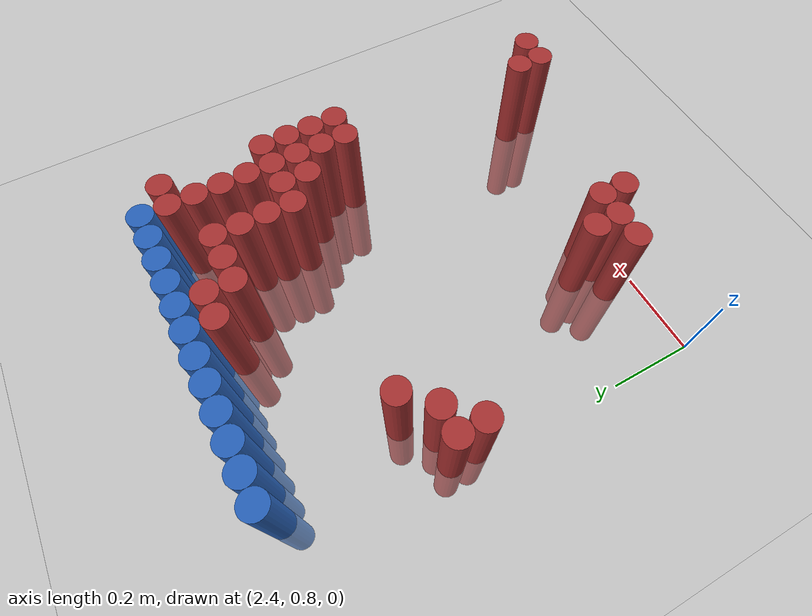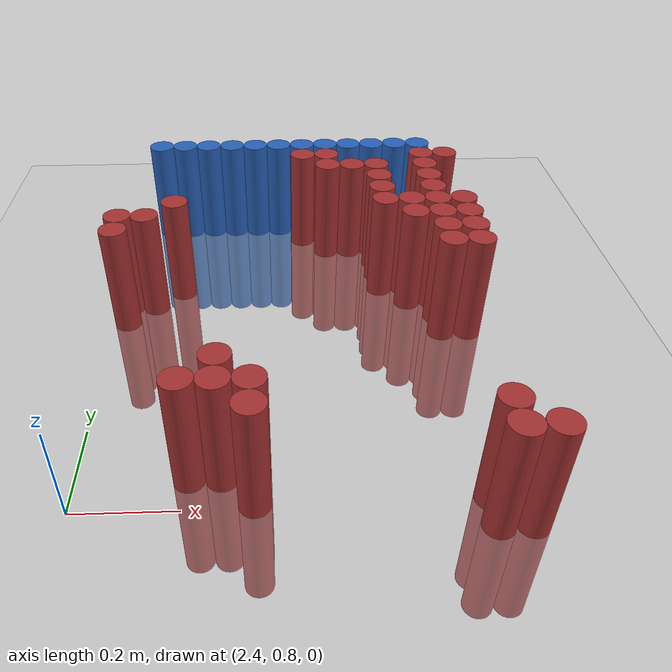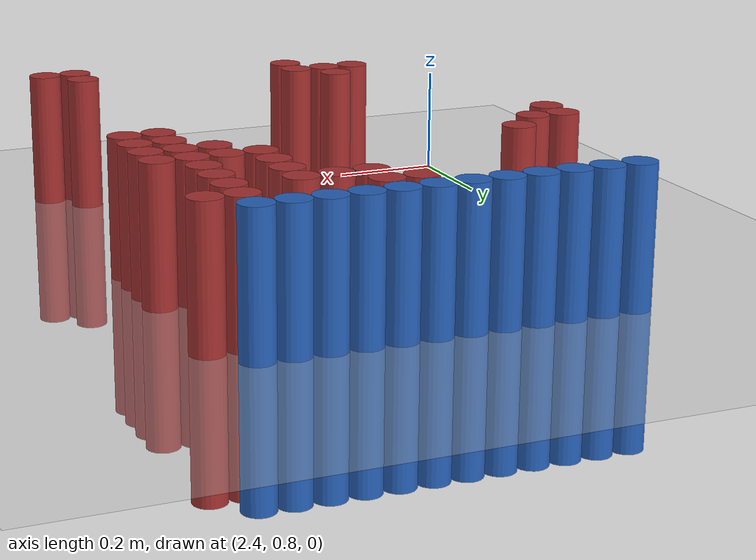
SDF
<sdf version="1.6">
 <world name="default">
  <model name="ground_plane">
   <static>1</static>
   <link name="link">
    <collision name="collision">
     <geometry><plane><normal>0 0 1</normal><size>100 100</size></plane></geometry>
     <surface><friction><ode><mu>100</mu><mu2>50</mu2></ode></friction></surface>
    </collision>
    <visual name="visual">
     <cast_shadows>0</cast_shadows>
     <geometry><plane><normal>0 0 1</normal><size>100 100</size></plane></geometry>
     <material>
      <script><uri>file://media/materials/scripts/gazebo.material</uri><name>Gazebo/Grey</name></script>
     </material>
    </visual>
   </link>
  </model>
  <model name="unit_cylinder_102">
   <static>1</static>
   <pose>2.490000 1.770000 0.000000 0.000000 0.000000 0.000000</pose>
   <link name="link">
    <inertial>
     <mass>1</mass>
     <inertia><ixx>0.145833</ixx><ixy>0</ixy><ixz>0</ixz><iyy>0.145833</iyy><iyz>0</iyz><izz>0.125</izz></inertia>
    </inertial>
    <collision name="collision">
     <geometry><cylinder><radius>0.030000</radius><length>0.5</length></cylinder></geometry>
    </collision>
    <visual name="visual">
     <geometry><cylinder><radius>0.030000</radius><length>0.5</length></cylinder></geometry>
     <material>
      <ambient>0.152000 0.379000 0.720000 1</ambient>
      <diffuse>0.152000 0.379000 0.720000 1</diffuse>
     </material>
     <material>
      <script><name>Gazebo/Grey</name><uri>file://media/materials/scripts/gazebo.material</uri></script>
     </material>
    </visual>
   </link>
  </model>
  <model name="unit_cylinder_103">
   <static>1</static>
   <pose>2.550000 1.770000 0.000000 0.000000 0.000000 0.000000</pose>
   <link name="link">
    <inertial>
     <mass>1</mass>
     <inertia><ixx>0.145833</ixx><ixy>0</ixy><ixz>0</ixz><iyy>0.145833</iyy><iyz>0</iyz><izz>0.125</izz></inertia>
    </inertial>
    <collision name="collision">
     <geometry><cylinder><radius>0.030000</radius><length>0.5</length></cylinder></geometry>
    </collision>
    <visual name="visual">
     <geometry><cylinder><radius>0.030000</radius><length>0.5</length></cylinder></geometry>
     <material>
      <ambient>0.152000 0.379000 0.720000 1</ambient>
      <diffuse>0.152000 0.379000 0.720000 1</diffuse>
     </material>
     <material>
      <script><name>Gazebo/Grey</name><uri>file://media/materials/scripts/gazebo.material</uri></script>
     </material>
    </visual>
   </link>
  </model>
  <model name="unit_cylinder_104">
   <static>1</static>
   <pose>2.610000 1.770000 0.000000 0.000000 0.000000 0.000000</pose>
   <link name="link">
    <inertial>
     <mass>1</mass>
     <inertia><ixx>0.145833</ixx><ixy>0</ixy><ixz>0</ixz><iyy>0.145833</iyy><iyz>0</iyz><izz>0.125</izz></inertia>
    </inertial>
    <collision name="collision">
     <geometry><cylinder><radius>0.030000</radius><length>0.5</length></cylinder></geometry>
    </collision>
    <visual name="visual">
     <geometry><cylinder><radius>0.030000</radius><length>0.5</length></cylinder></geometry>
     <material>
      <ambient>0.152000 0.379000 0.720000 1</ambient>
      <diffuse>0.152000 0.379000 0.720000 1</diffuse>
     </material>
     <material>
      <script><name>Gazebo/Grey</name><uri>file://media/materials/scripts/gazebo.material</uri></script>
     </material>
    </visual>
   </link>
  </model>
  <model name="unit_cylinder_105">
   <static>1</static>
   <pose>2.670000 1.770000 0.000000 0.000000 0.000000 0.000000</pose>
   <link name="link">
    <inertial>
     <mass>1</mass>
     <inertia><ixx>0.145833</ixx><ixy>0</ixy><ixz>0</ixz><iyy>0.145833</iyy><iyz>0</iyz><izz>0.125</izz></inertia>
    </inertial>
    <collision name="collision">
     <geometry><cylinder><radius>0.030000</radius><length>0.5</length></cylinder></geometry>
    </collision>
    <visual name="visual">
     <geometry><cylinder><radius>0.030000</radius><length>0.5</length></cylinder></geometry>
     <material>
      <ambient>0.152000 0.379000 0.720000 1</ambient>
      <diffuse>0.152000 0.379000 0.720000 1</diffuse>
     </material>
     <material>
      <script><name>Gazebo/Grey</name><uri>file://media/materials/scripts/gazebo.material</uri></script>
     </material>
    </visual>
   </link>
  </model>
  <model name="unit_cylinder_106">
   <static>1</static>
   <pose>2.730000 1.770000 0.000000 0.000000 0.000000 0.000000</pose>
   <link name="link">
    <inertial>
     <mass>1</mass>
     <inertia><ixx>0.145833</ixx><ixy>0</ixy><ixz>0</ixz><iyy>0.145833</iyy><iyz>0</iyz><izz>0.125</izz></inertia>
    </inertial>
    <collision name="collision">
     <geometry><cylinder><radius>0.030000</radius><length>0.5</length></cylinder></geometry>
    </collision>
    <visual name="visual">
     <geometry><cylinder><radius>0.030000</radius><length>0.5</length></cylinder></geometry>
     <material>
      <ambient>0.152000 0.379000 0.720000 1</ambient>
      <diffuse>0.152000 0.379000 0.720000 1</diffuse>
     </material>
     <material>
      <script><name>Gazebo/Grey</name><uri>file://media/materials/scripts/gazebo.material</uri></script>
     </material>
    </visual>
   </link>
  </model>
  <model name="unit_cylinder_107">
   <static>1</static>
   <pose>2.790000 1.770000 0.000000 0.000000 0.000000 0.000000</pose>
   <link name="link">
    <inertial>
     <mass>1</mass>
     <inertia><ixx>0.145833</ixx><ixy>0</ixy><ixz>0</ixz><iyy>0.145833</iyy><iyz>0</iyz><izz>0.125</izz></inertia>
    </inertial>
    <collision name="collision">
     <geometry><cylinder><radius>0.030000</radius><length>0.5</length></cylinder></geometry>
    </collision>
    <visual name="visual">
     <geometry><cylinder><radius>0.030000</radius><length>0.5</length></cylinder></geometry>
     <material>
      <ambient>0.152000 0.379000 0.720000 1</ambient>
      <diffuse>0.152000 0.379000 0.720000 1</diffuse>
     </material>
     <material>
      <script><name>Gazebo/Grey</name><uri>file://media/materials/scripts/gazebo.material</uri></script>
     </material>
    </visual>
   </link>
  </model>
  <model name="unit_cylinder_108">
   <static>1</static>
   <pose>2.850000 1.770000 0.000000 0.000000 0.000000 0.000000</pose>
   <link name="link">
    <inertial>
     <mass>1</mass>
     <inertia><ixx>0.145833</ixx><ixy>0</ixy><ixz>0</ixz><iyy>0.145833</iyy><iyz>0</iyz><izz>0.125</izz></inertia>
    </inertial>
    <collision name="collision">
     <geometry><cylinder><radius>0.030000</radius><length>0.5</length></cylinder></geometry>
    </collision>
    <visual name="visual">
     <geometry><cylinder><radius>0.030000</radius><length>0.5</length></cylinder></geometry>
     <material>
      <ambient>0.152000 0.379000 0.720000 1</ambient>
      <diffuse>0.152000 0.379000 0.720000 1</diffuse>
     </material>
     <material>
      <script><name>Gazebo/Grey</name><uri>file://media/materials/scripts/gazebo.material</uri></script>
     </material>
    </visual>
   </link>
  </model>
  <model name="unit_cylinder_109">
   <static>1</static>
   <pose>2.910000 1.770000 0.000000 0.000000 0.000000 0.000000</pose>
   <link name="link">
    <inertial>
     <mass>1</mass>
     <inertia><ixx>0.145833</ixx><ixy>0</ixy><ixz>0</ixz><iyy>0.145833</iyy><iyz>0</iyz><izz>0.125</izz></inertia>
    </inertial>
    <collision name="collision">
     <geometry><cylinder><radius>0.030000</radius><length>0.5</length></cylinder></geometry>
    </collision>
    <visual name="visual">
     <geometry><cylinder><radius>0.030000</radius><length>0.5</length></cylinder></geometry>
     <material>
      <ambient>0.152000 0.379000 0.720000 1</ambient>
      <diffuse>0.152000 0.379000 0.720000 1</diffuse>
     </material>
     <material>
      <script><name>Gazebo/Grey</name><uri>file://media/materials/scripts/gazebo.material</uri></script>
     </material>
    </visual>
   </link>
  </model>
  <model name="unit_cylinder_110">
   <static>1</static>
   <pose>2.970000 1.770000 0.000000 0.000000 0.000000 0.000000</pose>
   <link name="link">
    <inertial>
     <mass>1</mass>
     <inertia><ixx>0.145833</ixx><ixy>0</ixy><ixz>0</ixz><iyy>0.145833</iyy><iyz>0</iyz><izz>0.125</izz></inertia>
    </inertial>
    <collision name="collision">
     <geometry><cylinder><radius>0.030000</radius><length>0.5</length></cylinder></geometry>
    </collision>
    <visual name="visual">
     <geometry><cylinder><radius>0.030000</radius><length>0.5</length></cylinder></geometry>
     <material>
      <ambient>0.152000 0.379000 0.720000 1</ambient>
      <diffuse>0.152000 0.379000 0.720000 1</diffuse>
     </material>
     <material>
      <script><name>Gazebo/Grey</name><uri>file://media/materials/scripts/gazebo.material</uri></script>
     </material>
    </visual>
   </link>
  </model>
  <model name="unit_cylinder_111">
   <static>1</static>
   <pose>3.030000 1.770000 0.000000 0.000000 0.000000 0.000000</pose>
   <link name="link">
    <inertial>
     <mass>1</mass>
     <inertia><ixx>0.145833</ixx><ixy>0</ixy><ixz>0</ixz><iyy>0.145833</iyy><iyz>0</iyz><izz>0.125</izz></inertia>
    </inertial>
    <collision name="collision">
     <geometry><cylinder><radius>0.030000</radius><length>0.5</length></cylinder></geometry>
    </collision>
    <visual name="visual">
     <geometry><cylinder><radius>0.030000</radius><length>0.5</length></cylinder></geometry>
     <material>
      <ambient>0.152000 0.379000 0.720000 1</ambient>
      <diffuse>0.152000 0.379000 0.720000 1</diffuse>
     </material>
     <material>
      <script><name>Gazebo/Grey</name><uri>file://media/materials/scripts/gazebo.material</uri></script>
     </material>
    </visual>
   </link>
  </model>
  <model name="unit_cylinder_112">
   <static>1</static>
   <pose>3.090000 1.770000 0.000000 0.000000 0.000000 0.000000</pose>
   <link name="link">
    <inertial>
     <mass>1</mass>
     <inertia><ixx>0.145833</ixx><ixy>0</ixy><ixz>0</ixz><iyy>0.145833</iyy><iyz>0</iyz><izz>0.125</izz></inertia>
    </inertial>
    <collision name="collision">
     <geometry><cylinder><radius>0.030000</radius><length>0.5</length></cylinder></geometry>
    </collision>
    <visual name="visual">
     <geometry><cylinder><radius>0.030000</radius><length>0.5</length></cylinder></geometry>
     <material>
      <ambient>0.152000 0.379000 0.720000 1</ambient>
      <diffuse>0.152000 0.379000 0.720000 1</diffuse>
     </material>
     <material>
      <script><name>Gazebo/Grey</name><uri>file://media/materials/scripts/gazebo.material</uri></script>
     </material>
    </visual>
   </link>
  </model>
  <model name="unit_cylinder_113">
   <static>1</static>
   <pose>3.150000 1.770000 0.000000 0.000000 0.000000 0.000000</pose>
   <link name="link">
    <inertial>
     <mass>1</mass>
     <inertia><ixx>0.145833</ixx><ixy>0</ixy><ixz>0</ixz><iyy>0.145833</iyy><iyz>0</iyz><izz>0.125</izz></inertia>
    </inertial>
    <collision name="collision">
     <geometry><cylinder><radius>0.030000</radius><length>0.5</length></cylinder></geometry>
    </collision>
    <visual name="visual">
     <geometry><cylinder><radius>0.030000</radius><length>0.5</length></cylinder></geometry>
     <material>
      <ambient>0.152000 0.379000 0.720000 1</ambient>
      <diffuse>0.152000 0.379000 0.720000 1</diffuse>
     </material>
     <material>
      <script><name>Gazebo/Grey</name><uri>file://media/materials/scripts/gazebo.material</uri></script>
     </material>
    </visual>
   </link>
  </model>
  <model name="unit_cylinder_129">
   <static>1</static>
   <pose>2.850000 1.710000 0.000000 0.000000 0.000000 0.000000</pose>
   <link name="link">
    <inertial>
     <mass>1</mass>
     <inertia><ixx>0.145833</ixx><ixy>0</ixy><ixz>0</ixz><iyy>0.145833</iyy><iyz>0</iyz><izz>0.125</izz></inertia>
    </inertial>
    <collision name="collision">
     <geometry><cylinder><radius>0.030000</radius><length>0.5</length></cylinder></geometry>
    </collision>
    <visual name="visual">
     <geometry><cylinder><radius>0.030000</radius><length>0.5</length></cylinder></geometry>
     <material>
      <ambient>0.648000 0.192000 0.192000 1</ambient>
      <diffuse>0.648000 0.192000 0.192000 1</diffuse>
     </material>
     <material>
      <script><name>Gazebo/Grey</name><uri>file://media/materials/scripts/gazebo.material</uri></script>
     </material>
    </visual>
   </link>
  </model>
  <model name="unit_cylinder_130">
   <static>1</static>
   <pose>2.910000 1.710000 0.000000 0.000000 0.000000 0.000000</pose>
   <link name="link">
    <inertial>
     <mass>1</mass>
     <inertia><ixx>0.145833</ixx><ixy>0</ixy><ixz>0</ixz><iyy>0.145833</iyy><iyz>0</iyz><izz>0.125</izz></inertia>
    </inertial>
    <collision name="collision">
     <geometry><cylinder><radius>0.030000</radius><length>0.5</length></cylinder></geometry>
    </collision>
    <visual name="visual">
     <geometry><cylinder><radius>0.030000</radius><length>0.5</length></cylinder></geometry>
     <material>
      <ambient>0.648000 0.192000 0.192000 1</ambient>
      <diffuse>0.648000 0.192000 0.192000 1</diffuse>
     </material>
     <material>
      <script><name>Gazebo/Grey</name><uri>file://media/materials/scripts/gazebo.material</uri></script>
     </material>
    </visual>
   </link>
  </model>
  <model name="unit_cylinder_131">
   <static>1</static>
   <pose>3.150000 1.710000 0.000000 0.000000 0.000000 0.000000</pose>
   <link name="link">
    <inertial>
     <mass>1</mass>
     <inertia><ixx>0.145833</ixx><ixy>0</ixy><ixz>0</ixz><iyy>0.145833</iyy><iyz>0</iyz><izz>0.125</izz></inertia>
    </inertial>
    <collision name="collision">
     <geometry><cylinder><radius>0.030000</radius><length>0.5</length></cylinder></geometry>
    </collision>
    <visual name="visual">
     <geometry><cylinder><radius>0.030000</radius><length>0.5</length></cylinder></geometry>
     <material>
      <ambient>0.648000 0.192000 0.192000 1</ambient>
      <diffuse>0.648000 0.192000 0.192000 1</diffuse>
     </material>
     <material>
      <script><name>Gazebo/Grey</name><uri>file://media/materials/scripts/gazebo.material</uri></script>
     </material>
    </visual>
   </link>
  </model>
  <model name="unit_cylinder_132">
   <static>1</static>
   <pose>3.210000 1.710000 0.000000 0.000000 0.000000 0.000000</pose>
   <link name="link">
    <inertial>
     <mass>1</mass>
     <inertia><ixx>0.145833</ixx><ixy>0</ixy><ixz>0</ixz><iyy>0.145833</iyy><iyz>0</iyz><izz>0.125</izz></inertia>
    </inertial>
    <collision name="collision">
     <geometry><cylinder><radius>0.030000</radius><length>0.5</length></cylinder></geometry>
    </collision>
    <visual name="visual">
     <geometry><cylinder><radius>0.030000</radius><length>0.5</length></cylinder></geometry>
     <material>
      <ambient>0.648000 0.192000 0.192000 1</ambient>
      <diffuse>0.648000 0.192000 0.192000 1</diffuse>
     </material>
     <material>
      <script><name>Gazebo/Grey</name><uri>file://media/materials/scripts/gazebo.material</uri></script>
     </material>
    </visual>
   </link>
  </model>
  <model name="unit_cylinder_142">
   <static>1</static>
   <pose>2.910000 1.650000 0.000000 0.000000 0.000000 0.000000</pose>
   <link name="link">
    <inertial>
     <mass>1</mass>
     <inertia><ixx>0.145833</ixx><ixy>0</ixy><ixz>0</ixz><iyy>0.145833</iyy><iyz>0</iyz><izz>0.125</izz></inertia>
    </inertial>
    <collision name="collision">
     <geometry><cylinder><radius>0.030000</radius><length>0.5</length></cylinder></geometry>
    </collision>
    <visual name="visual">
     <geometry><cylinder><radius>0.030000</radius><length>0.5</length></cylinder></geometry>
     <material>
      <ambient>0.648000 0.192000 0.192000 1</ambient>
      <diffuse>0.648000 0.192000 0.192000 1</diffuse>
     </material>
     <material>
      <script><name>Gazebo/Grey</name><uri>file://media/materials/scripts/gazebo.material</uri></script>
     </material>
    </visual>
   </link>
  </model>
  <model name="unit_cylinder_143">
   <static>1</static>
   <pose>2.970000 1.650000 0.000000 0.000000 0.000000 0.000000</pose>
   <link name="link">
    <inertial>
     <mass>1</mass>
     <inertia><ixx>0.145833</ixx><ixy>0</ixy><ixz>0</ixz><iyy>0.145833</iyy><iyz>0</iyz><izz>0.125</izz></inertia>
    </inertial>
    <collision name="collision">
     <geometry><cylinder><radius>0.030000</radius><length>0.5</length></cylinder></geometry>
    </collision>
    <visual name="visual">
     <geometry><cylinder><radius>0.030000</radius><length>0.5</length></cylinder></geometry>
     <material>
      <ambient>0.648000 0.192000 0.192000 1</ambient>
      <diffuse>0.648000 0.192000 0.192000 1</diffuse>
     </material>
     <material>
      <script><name>Gazebo/Grey</name><uri>file://media/materials/scripts/gazebo.material</uri></script>
     </material>
    </visual>
   </link>
  </model>
  <model name="unit_cylinder_144">
   <static>1</static>
   <pose>3.030000 1.650000 0.000000 0.000000 0.000000 0.000000</pose>
   <link name="link">
    <inertial>
     <mass>1</mass>
     <inertia><ixx>0.145833</ixx><ixy>0</ixy><ixz>0</ixz><iyy>0.145833</iyy><iyz>0</iyz><izz>0.125</izz></inertia>
    </inertial>
    <collision name="collision">
     <geometry><cylinder><radius>0.030000</radius><length>0.5</length></cylinder></geometry>
    </collision>
    <visual name="visual">
     <geometry><cylinder><radius>0.030000</radius><length>0.5</length></cylinder></geometry>
     <material>
      <ambient>0.648000 0.192000 0.192000 1</ambient>
      <diffuse>0.648000 0.192000 0.192000 1</diffuse>
     </material>
     <material>
      <script><name>Gazebo/Grey</name><uri>file://media/materials/scripts/gazebo.material</uri></script>
     </material>
    </visual>
   </link>
  </model>
  <model name="unit_cylinder_145">
   <static>1</static>
   <pose>3.150000 1.650000 0.000000 0.000000 0.000000 0.000000</pose>
   <link name="link">
    <inertial>
     <mass>1</mass>
     <inertia><ixx>0.145833</ixx><ixy>0</ixy><ixz>0</ixz><iyy>0.145833</iyy><iyz>0</iyz><izz>0.125</izz></inertia>
    </inertial>
    <collision name="collision">
     <geometry><cylinder><radius>0.030000</radius><length>0.5</length></cylinder></geometry>
    </collision>
    <visual name="visual">
     <geometry><cylinder><radius>0.030000</radius><length>0.5</length></cylinder></geometry>
     <material>
      <ambient>0.648000 0.192000 0.192000 1</ambient>
      <diffuse>0.648000 0.192000 0.192000 1</diffuse>
     </material>
     <material>
      <script><name>Gazebo/Grey</name><uri>file://media/materials/scripts/gazebo.material</uri></script>
     </material>
    </visual>
   </link>
  </model>
  <model name="unit_cylinder_150">
   <static>1</static>
   <pose>3.030000 1.590000 0.000000 0.000000 0.000000 0.000000</pose>
   <link name="link">
    <inertial>
     <mass>1</mass>
     <inertia><ixx>0.145833</ixx><ixy>0</ixy><ixz>0</ixz><iyy>0.145833</iyy><iyz>0</iyz><izz>0.125</izz></inertia>
    </inertial>
    <collision name="collision">
     <geometry><cylinder><radius>0.030000</radius><length>0.5</length></cylinder></geometry>
    </collision>
    <visual name="visual">
     <geometry><cylinder><radius>0.030000</radius><length>0.5</length></cylinder></geometry>
     <material>
      <ambient>0.648000 0.192000 0.192000 1</ambient>
      <diffuse>0.648000 0.192000 0.192000 1</diffuse>
     </material>
     <material>
      <script><name>Gazebo/Grey</name><uri>file://media/materials/scripts/gazebo.material</uri></script>
     </material>
    </visual>
   </link>
  </model>
  <model name="unit_cylinder_151">
   <static>1</static>
   <pose>3.150000 1.590000 0.000000 0.000000 0.000000 0.000000</pose>
   <link name="link">
    <inertial>
     <mass>1</mass>
     <inertia><ixx>0.145833</ixx><ixy>0</ixy><ixz>0</ixz><iyy>0.145833</iyy><iyz>0</iyz><izz>0.125</izz></inertia>
    </inertial>
    <collision name="collision">
     <geometry><cylinder><radius>0.030000</radius><length>0.5</length></cylinder></geometry>
    </collision>
    <visual name="visual">
     <geometry><cylinder><radius>0.030000</radius><length>0.5</length></cylinder></geometry>
     <material>
      <ambient>0.648000 0.192000 0.192000 1</ambient>
      <diffuse>0.648000 0.192000 0.192000 1</diffuse>
     </material>
     <material>
      <script><name>Gazebo/Grey</name><uri>file://media/materials/scripts/gazebo.material</uri></script>
     </material>
    </visual>
   </link>
  </model>
  <model name="unit_cylinder_154">
   <static>1</static>
   <pose>3.030000 1.530000 0.000000 0.000000 0.000000 0.000000</pose>
   <link name="link">
    <inertial>
     <mass>1</mass>
     <inertia><ixx>0.145833</ixx><ixy>0</ixy><ixz>0</ixz><iyy>0.145833</iyy><iyz>0</iyz><izz>0.125</izz></inertia>
    </inertial>
    <collision name="collision">
     <geometry><cylinder><radius>0.030000</radius><length>0.5</length></cylinder></geometry>
    </collision>
    <visual name="visual">
     <geometry><cylinder><radius>0.030000</radius><length>0.5</length></cylinder></geometry>
     <material>
      <ambient>0.648000 0.192000 0.192000 1</ambient>
      <diffuse>0.648000 0.192000 0.192000 1</diffuse>
     </material>
     <material>
      <script><name>Gazebo/Grey</name><uri>file://media/materials/scripts/gazebo.material</uri></script>
     </material>
    </visual>
   </link>
  </model>
  <model name="unit_cylinder_155">
   <static>1</static>
   <pose>3.150000 1.530000 0.000000 0.000000 0.000000 0.000000</pose>
   <link name="link">
    <inertial>
     <mass>1</mass>
     <inertia><ixx>0.145833</ixx><ixy>0</ixy><ixz>0</ixz><iyy>0.145833</iyy><iyz>0</iyz><izz>0.125</izz></inertia>
    </inertial>
    <collision name="collision">
     <geometry><cylinder><radius>0.030000</radius><length>0.5</length></cylinder></geometry>
    </collision>
    <visual name="visual">
     <geometry><cylinder><radius>0.030000</radius><length>0.5</length></cylinder></geometry>
     <material>
      <ambient>0.648000 0.192000 0.192000 1</ambient>
      <diffuse>0.648000 0.192000 0.192000 1</diffuse>
     </material>
     <material>
      <script><name>Gazebo/Grey</name><uri>file://media/materials/scripts/gazebo.material</uri></script>
     </material>
    </visual>
   </link>
  </model>
  <model name="unit_cylinder_158">
   <static>1</static>
   <pose>2.550000 1.470000 0.000000 0.000000 0.000000 0.000000</pose>
   <link name="link">
    <inertial>
     <mass>1</mass>
     <inertia><ixx>0.145833</ixx><ixy>0</ixy><ixz>0</ixz><iyy>0.145833</iyy><iyz>0</iyz><izz>0.125</izz></inertia>
    </inertial>
    <collision name="collision">
     <geometry><cylinder><radius>0.030000</radius><length>0.5</length></cylinder></geometry>
    </collision>
    <visual name="visual">
     <geometry><cylinder><radius>0.030000</radius><length>0.5</length></cylinder></geometry>
     <material>
      <ambient>0.648000 0.192000 0.192000 1</ambient>
      <diffuse>0.648000 0.192000 0.192000 1</diffuse>
     </material>
     <material>
      <script><name>Gazebo/Grey</name><uri>file://media/materials/scripts/gazebo.material</uri></script>
     </material>
    </visual>
   </link>
  </model>
  <model name="unit_cylinder_159">
   <static>1</static>
   <pose>3.030000 1.470000 0.000000 0.000000 0.000000 0.000000</pose>
   <link name="link">
    <inertial>
     <mass>1</mass>
     <inertia><ixx>0.145833</ixx><ixy>0</ixy><ixz>0</ixz><iyy>0.145833</iyy><iyz>0</iyz><izz>0.125</izz></inertia>
    </inertial>
    <collision name="collision">
     <geometry><cylinder><radius>0.030000</radius><length>0.5</length></cylinder></geometry>
    </collision>
    <visual name="visual">
     <geometry><cylinder><radius>0.030000</radius><length>0.5</length></cylinder></geometry>
     <material>
      <ambient>0.648000 0.192000 0.192000 1</ambient>
      <diffuse>0.648000 0.192000 0.192000 1</diffuse>
     </material>
     <material>
      <script><name>Gazebo/Grey</name><uri>file://media/materials/scripts/gazebo.material</uri></script>
     </material>
    </visual>
   </link>
  </model>
  <model name="unit_cylinder_160">
   <static>1</static>
   <pose>3.090000 1.470000 0.000000 0.000000 0.000000 0.000000</pose>
   <link name="link">
    <inertial>
     <mass>1</mass>
     <inertia><ixx>0.145833</ixx><ixy>0</ixy><ixz>0</ixz><iyy>0.145833</iyy><iyz>0</iyz><izz>0.125</izz></inertia>
    </inertial>
    <collision name="collision">
     <geometry><cylinder><radius>0.030000</radius><length>0.5</length></cylinder></geometry>
    </collision>
    <visual name="visual">
     <geometry><cylinder><radius>0.030000</radius><length>0.5</length></cylinder></geometry>
     <material>
      <ambient>0.648000 0.192000 0.192000 1</ambient>
      <diffuse>0.648000 0.192000 0.192000 1</diffuse>
     </material>
     <material>
      <script><name>Gazebo/Grey</name><uri>file://media/materials/scripts/gazebo.material</uri></script>
     </material>
    </visual>
   </link>
  </model>
  <model name="unit_cylinder_161">
   <static>1</static>
   <pose>3.150000 1.470000 0.000000 0.000000 0.000000 0.000000</pose>
   <link name="link">
    <inertial>
     <mass>1</mass>
     <inertia><ixx>0.145833</ixx><ixy>0</ixy><ixz>0</ixz><iyy>0.145833</iyy><iyz>0</iyz><izz>0.125</izz></inertia>
    </inertial>
    <collision name="collision">
     <geometry><cylinder><radius>0.030000</radius><length>0.5</length></cylinder></geometry>
    </collision>
    <visual name="visual">
     <geometry><cylinder><radius>0.030000</radius><length>0.5</length></cylinder></geometry>
     <material>
      <ambient>0.648000 0.192000 0.192000 1</ambient>
      <diffuse>0.648000 0.192000 0.192000 1</diffuse>
     </material>
     <material>
      <script><name>Gazebo/Grey</name><uri>file://media/materials/scripts/gazebo.material</uri></script>
     </material>
    </visual>
   </link>
  </model>
  <model name="unit_cylinder_162">
   <static>1</static>
   <pose>3.210000 1.470000 0.000000 0.000000 0.000000 0.000000</pose>
   <link name="link">
    <inertial>
     <mass>1</mass>
     <inertia><ixx>0.145833</ixx><ixy>0</ixy><ixz>0</ixz><iyy>0.145833</iyy><iyz>0</iyz><izz>0.125</izz></inertia>
    </inertial>
    <collision name="collision">
     <geometry><cylinder><radius>0.030000</radius><length>0.5</length></cylinder></geometry>
    </collision>
    <visual name="visual">
     <geometry><cylinder><radius>0.030000</radius><length>0.5</length></cylinder></geometry>
     <material>
      <ambient>0.648000 0.192000 0.192000 1</ambient>
      <diffuse>0.648000 0.192000 0.192000 1</diffuse>
     </material>
     <material>
      <script><name>Gazebo/Grey</name><uri>file://media/materials/scripts/gazebo.material</uri></script>
     </material>
    </visual>
   </link>
  </model>
  <model name="unit_cylinder_166">
   <static>1</static>
   <pose>2.430000 1.410000 0.000000 0.000000 0.000000 0.000000</pose>
   <link name="link">
    <inertial>
     <mass>1</mass>
     <inertia><ixx>0.145833</ixx><ixy>0</ixy><ixz>0</ixz><iyy>0.145833</iyy><iyz>0</iyz><izz>0.125</izz></inertia>
    </inertial>
    <collision name="collision">
     <geometry><cylinder><radius>0.030000</radius><length>0.5</length></cylinder></geometry>
    </collision>
    <visual name="visual">
     <geometry><cylinder><radius>0.030000</radius><length>0.5</length></cylinder></geometry>
     <material>
      <ambient>0.648000 0.192000 0.192000 1</ambient>
      <diffuse>0.648000 0.192000 0.192000 1</diffuse>
     </material>
     <material>
      <script><name>Gazebo/Grey</name><uri>file://media/materials/scripts/gazebo.material</uri></script>
     </material>
    </visual>
   </link>
  </model>
  <model name="unit_cylinder_167">
   <static>1</static>
   <pose>2.490000 1.410000 0.000000 0.000000 0.000000 0.000000</pose>
   <link name="link">
    <inertial>
     <mass>1</mass>
     <inertia><ixx>0.145833</ixx><ixy>0</ixy><ixz>0</ixz><iyy>0.145833</iyy><iyz>0</iyz><izz>0.125</izz></inertia>
    </inertial>
    <collision name="collision">
     <geometry><cylinder><radius>0.030000</radius><length>0.5</length></cylinder></geometry>
    </collision>
    <visual name="visual">
     <geometry><cylinder><radius>0.030000</radius><length>0.5</length></cylinder></geometry>
     <material>
      <ambient>0.648000 0.192000 0.192000 1</ambient>
      <diffuse>0.648000 0.192000 0.192000 1</diffuse>
     </material>
     <material>
      <script><name>Gazebo/Grey</name><uri>file://media/materials/scripts/gazebo.material</uri></script>
     </material>
    </visual>
   </link>
  </model>
  <model name="unit_cylinder_168">
   <static>1</static>
   <pose>3.090000 1.410000 0.000000 0.000000 0.000000 0.000000</pose>
   <link name="link">
    <inertial>
     <mass>1</mass>
     <inertia><ixx>0.145833</ixx><ixy>0</ixy><ixz>0</ixz><iyy>0.145833</iyy><iyz>0</iyz><izz>0.125</izz></inertia>
    </inertial>
    <collision name="collision">
     <geometry><cylinder><radius>0.030000</radius><length>0.5</length></cylinder></geometry>
    </collision>
    <visual name="visual">
     <geometry><cylinder><radius>0.030000</radius><length>0.5</length></cylinder></geometry>
     <material>
      <ambient>0.648000 0.192000 0.192000 1</ambient>
      <diffuse>0.648000 0.192000 0.192000 1</diffuse>
     </material>
     <material>
      <script><name>Gazebo/Grey</name><uri>file://media/materials/scripts/gazebo.material</uri></script>
     </material>
    </visual>
   </link>
  </model>
  <model name="unit_cylinder_169">
   <static>1</static>
   <pose>3.150000 1.410000 0.000000 0.000000 0.000000 0.000000</pose>
   <link name="link">
    <inertial>
     <mass>1</mass>
     <inertia><ixx>0.145833</ixx><ixy>0</ixy><ixz>0</ixz><iyy>0.145833</iyy><iyz>0</iyz><izz>0.125</izz></inertia>
    </inertial>
    <collision name="collision">
     <geometry><cylinder><radius>0.030000</radius><length>0.5</length></cylinder></geometry>
    </collision>
    <visual name="visual">
     <geometry><cylinder><radius>0.030000</radius><length>0.5</length></cylinder></geometry>
     <material>
      <ambient>0.648000 0.192000 0.192000 1</ambient>
      <diffuse>0.648000 0.192000 0.192000 1</diffuse>
     </material>
     <material>
      <script><name>Gazebo/Grey</name><uri>file://media/materials/scripts/gazebo.material</uri></script>
     </material>
    </visual>
   </link>
  </model>
  <model name="unit_cylinder_170">
   <static>1</static>
   <pose>3.210000 1.410000 0.000000 0.000000 0.000000 0.000000</pose>
   <link name="link">
    <inertial>
     <mass>1</mass>
     <inertia><ixx>0.145833</ixx><ixy>0</ixy><ixz>0</ixz><iyy>0.145833</iyy><iyz>0</iyz><izz>0.125</izz></inertia>
    </inertial>
    <collision name="collision">
     <geometry><cylinder><radius>0.030000</radius><length>0.5</length></cylinder></geometry>
    </collision>
    <visual name="visual">
     <geometry><cylinder><radius>0.030000</radius><length>0.5</length></cylinder></geometry>
     <material>
      <ambient>0.648000 0.192000 0.192000 1</ambient>
      <diffuse>0.648000 0.192000 0.192000 1</diffuse>
     </material>
     <material>
      <script><name>Gazebo/Grey</name><uri>file://media/materials/scripts/gazebo.material</uri></script>
     </material>
    </visual>
   </link>
  </model>
  <model name="unit_cylinder_173">
   <static>1</static>
   <pose>2.430000 1.350000 0.000000 0.000000 0.000000 0.000000</pose>
   <link name="link">
    <inertial>
     <mass>1</mass>
     <inertia><ixx>0.145833</ixx><ixy>0</ixy><ixz>0</ixz><iyy>0.145833</iyy><iyz>0</iyz><izz>0.125</izz></inertia>
    </inertial>
    <collision name="collision">
     <geometry><cylinder><radius>0.030000</radius><length>0.5</length></cylinder></geometry>
    </collision>
    <visual name="visual">
     <geometry><cylinder><radius>0.030000</radius><length>0.5</length></cylinder></geometry>
     <material>
      <ambient>0.648000 0.192000 0.192000 1</ambient>
      <diffuse>0.648000 0.192000 0.192000 1</diffuse>
     </material>
     <material>
      <script><name>Gazebo/Grey</name><uri>file://media/materials/scripts/gazebo.material</uri></script>
     </material>
    </visual>
   </link>
  </model>
  <model name="unit_cylinder_174">
   <static>1</static>
   <pose>3.150000 1.350000 0.000000 0.000000 0.000000 0.000000</pose>
   <link name="link">
    <inertial>
     <mass>1</mass>
     <inertia><ixx>0.145833</ixx><ixy>0</ixy><ixz>0</ixz><iyy>0.145833</iyy><iyz>0</iyz><izz>0.125</izz></inertia>
    </inertial>
    <collision name="collision">
     <geometry><cylinder><radius>0.030000</radius><length>0.5</length></cylinder></geometry>
    </collision>
    <visual name="visual">
     <geometry><cylinder><radius>0.030000</radius><length>0.5</length></cylinder></geometry>
     <material>
      <ambient>0.648000 0.192000 0.192000 1</ambient>
      <diffuse>0.648000 0.192000 0.192000 1</diffuse>
     </material>
     <material>
      <script><name>Gazebo/Grey</name><uri>file://media/materials/scripts/gazebo.material</uri></script>
     </material>
    </visual>
   </link>
  </model>
  <model name="unit_cylinder_175">
   <static>1</static>
   <pose>3.210000 1.350000 0.000000 0.000000 0.000000 0.000000</pose>
   <link name="link">
    <inertial>
     <mass>1</mass>
     <inertia><ixx>0.145833</ixx><ixy>0</ixy><ixz>0</ixz><iyy>0.145833</iyy><iyz>0</iyz><izz>0.125</izz></inertia>
    </inertial>
    <collision name="collision">
     <geometry><cylinder><radius>0.030000</radius><length>0.5</length></cylinder></geometry>
    </collision>
    <visual name="visual">
     <geometry><cylinder><radius>0.030000</radius><length>0.5</length></cylinder></geometry>
     <material>
      <ambient>0.648000 0.192000 0.192000 1</ambient>
      <diffuse>0.648000 0.192000 0.192000 1</diffuse>
     </material>
     <material>
      <script><name>Gazebo/Grey</name><uri>file://media/materials/scripts/gazebo.material</uri></script>
     </material>
    </visual>
   </link>
  </model>
  <model name="unit_cylinder_177">
   <static>1</static>
   <pose>3.150000 1.290000 0.000000 0.000000 0.000000 0.000000</pose>
   <link name="link">
    <inertial>
     <mass>1</mass>
     <inertia><ixx>0.145833</ixx><ixy>0</ixy><ixz>0</ixz><iyy>0.145833</iyy><iyz>0</iyz><izz>0.125</izz></inertia>
    </inertial>
    <collision name="collision">
     <geometry><cylinder><radius>0.030000</radius><length>0.5</length></cylinder></geometry>
    </collision>
    <visual name="visual">
     <geometry><cylinder><radius>0.030000</radius><length>0.5</length></cylinder></geometry>
     <material>
      <ambient>0.648000 0.192000 0.192000 1</ambient>
      <diffuse>0.648000 0.192000 0.192000 1</diffuse>
     </material>
     <material>
      <script><name>Gazebo/Grey</name><uri>file://media/materials/scripts/gazebo.material</uri></script>
     </material>
    </visual>
   </link>
  </model>
  <model name="unit_cylinder_178">
   <static>1</static>
   <pose>3.210000 1.290000 0.000000 0.000000 0.000000 0.000000</pose>
   <link name="link">
    <inertial>
     <mass>1</mass>
     <inertia><ixx>0.145833</ixx><ixy>0</ixy><ixz>0</ixz><iyy>0.145833</iyy><iyz>0</iyz><izz>0.125</izz></inertia>
    </inertial>
    <collision name="collision">
     <geometry><cylinder><radius>0.030000</radius><length>0.5</length></cylinder></geometry>
    </collision>
    <visual name="visual">
     <geometry><cylinder><radius>0.030000</radius><length>0.5</length></cylinder></geometry>
     <material>
      <ambient>0.648000 0.192000 0.192000 1</ambient>
      <diffuse>0.648000 0.192000 0.192000 1</diffuse>
     </material>
     <material>
      <script><name>Gazebo/Grey</name><uri>file://media/materials/scripts/gazebo.material</uri></script>
     </material>
    </visual>
   </link>
  </model>
  <model name="unit_cylinder_184">
   <static>1</static>
   <pose>2.670000 0.930000 0.000000 0.000000 0.000000 0.000000</pose>
   <link name="link">
    <inertial>
     <mass>1</mass>
     <inertia><ixx>0.145833</ixx><ixy>0</ixy><ixz>0</ixz><iyy>0.145833</iyy><iyz>0</iyz><izz>0.125</izz></inertia>
    </inertial>
    <collision name="collision">
     <geometry><cylinder><radius>0.030000</radius><length>0.5</length></cylinder></geometry>
    </collision>
    <visual name="visual">
     <geometry><cylinder><radius>0.030000</radius><length>0.5</length></cylinder></geometry>
     <material>
      <ambient>0.648000 0.192000 0.192000 1</ambient>
      <diffuse>0.648000 0.192000 0.192000 1</diffuse>
     </material>
     <material>
      <script><name>Gazebo/Grey</name><uri>file://media/materials/scripts/gazebo.material</uri></script>
     </material>
    </visual>
   </link>
  </model>
  <model name="unit_cylinder_188">
   <static>1</static>
   <pose>2.610000 0.870000 0.000000 0.000000 0.000000 0.000000</pose>
   <link name="link">
    <inertial>
     <mass>1</mass>
     <inertia><ixx>0.145833</ixx><ixy>0</ixy><ixz>0</ixz><iyy>0.145833</iyy><iyz>0</iyz><izz>0.125</izz></inertia>
    </inertial>
    <collision name="collision">
     <geometry><cylinder><radius>0.030000</radius><length>0.5</length></cylinder></geometry>
    </collision>
    <visual name="visual">
     <geometry><cylinder><radius>0.030000</radius><length>0.5</length></cylinder></geometry>
     <material>
      <ambient>0.648000 0.192000 0.192000 1</ambient>
      <diffuse>0.648000 0.192000 0.192000 1</diffuse>
     </material>
     <material>
      <script><name>Gazebo/Grey</name><uri>file://media/materials/scripts/gazebo.material</uri></script>
     </material>
    </visual>
   </link>
  </model>
  <model name="unit_cylinder_189">
   <static>1</static>
   <pose>2.670000 0.870000 0.000000 0.000000 0.000000 0.000000</pose>
   <link name="link">
    <inertial>
     <mass>1</mass>
     <inertia><ixx>0.145833</ixx><ixy>0</ixy><ixz>0</ixz><iyy>0.145833</iyy><iyz>0</iyz><izz>0.125</izz></inertia>
    </inertial>
    <collision name="collision">
     <geometry><cylinder><radius>0.030000</radius><length>0.5</length></cylinder></geometry>
    </collision>
    <visual name="visual">
     <geometry><cylinder><radius>0.030000</radius><length>0.5</length></cylinder></geometry>
     <material>
      <ambient>0.648000 0.192000 0.192000 1</ambient>
      <diffuse>0.648000 0.192000 0.192000 1</diffuse>
     </material>
     <material>
      <script><name>Gazebo/Grey</name><uri>file://media/materials/scripts/gazebo.material</uri></script>
     </material>
    </visual>
   </link>
  </model>
  <model name="unit_cylinder_190">
   <static>1</static>
   <pose>2.730000 0.870000 0.000000 0.000000 0.000000 0.000000</pose>
   <link name="link">
    <inertial>
     <mass>1</mass>
     <inertia><ixx>0.145833</ixx><ixy>0</ixy><ixz>0</ixz><iyy>0.145833</iyy><iyz>0</iyz><izz>0.125</izz></inertia>
    </inertial>
    <collision name="collision">
     <geometry><cylinder><radius>0.030000</radius><length>0.5</length></cylinder></geometry>
    </collision>
    <visual name="visual">
     <geometry><cylinder><radius>0.030000</radius><length>0.5</length></cylinder></geometry>
     <material>
      <ambient>0.648000 0.192000 0.192000 1</ambient>
      <diffuse>0.648000 0.192000 0.192000 1</diffuse>
     </material>
     <material>
      <script><name>Gazebo/Grey</name><uri>file://media/materials/scripts/gazebo.material</uri></script>
     </material>
    </visual>
   </link>
  </model>
  <model name="unit_cylinder_197">
   <static>1</static>
   <pose>2.730000 0.810000 0.000000 0.000000 0.000000 0.000000</pose>
   <link name="link">
    <inertial>
     <mass>1</mass>
     <inertia><ixx>0.145833</ixx><ixy>0</ixy><ixz>0</ixz><iyy>0.145833</iyy><iyz>0</iyz><izz>0.125</izz></inertia>
    </inertial>
    <collision name="collision">
     <geometry><cylinder><radius>0.030000</radius><length>0.5</length></cylinder></geometry>
    </collision>
    <visual name="visual">
     <geometry><cylinder><radius>0.030000</radius><length>0.5</length></cylinder></geometry>
     <material>
      <ambient>0.648000 0.192000 0.192000 1</ambient>
      <diffuse>0.648000 0.192000 0.192000 1</diffuse>
     </material>
     <material>
      <script><name>Gazebo/Grey</name><uri>file://media/materials/scripts/gazebo.material</uri></script>
     </material>
    </visual>
   </link>
  </model>
  <model name="unit_cylinder_198">
   <static>1</static>
   <pose>3.150000 0.810000 0.000000 0.000000 0.000000 0.000000</pose>
   <link name="link">
    <inertial>
     <mass>1</mass>
     <inertia><ixx>0.145833</ixx><ixy>0</ixy><ixz>0</ixz><iyy>0.145833</iyy><iyz>0</iyz><izz>0.125</izz></inertia>
    </inertial>
    <collision name="collision">
     <geometry><cylinder><radius>0.030000</radius><length>0.5</length></cylinder></geometry>
    </collision>
    <visual name="visual">
     <geometry><cylinder><radius>0.030000</radius><length>0.5</length></cylinder></geometry>
     <material>
      <ambient>0.648000 0.192000 0.192000 1</ambient>
      <diffuse>0.648000 0.192000 0.192000 1</diffuse>
     </material>
     <material>
      <script><name>Gazebo/Grey</name><uri>file://media/materials/scripts/gazebo.material</uri></script>
     </material>
    </visual>
   </link>
  </model>
  <model name="unit_cylinder_207">
   <static>1</static>
   <pose>3.150000 0.750000 0.000000 0.000000 0.000000 0.000000</pose>
   <link name="link">
    <inertial>
     <mass>1</mass>
     <inertia><ixx>0.145833</ixx><ixy>0</ixy><ixz>0</ixz><iyy>0.145833</iyy><iyz>0</iyz><izz>0.125</izz></inertia>
    </inertial>
    <collision name="collision">
     <geometry><cylinder><radius>0.030000</radius><length>0.5</length></cylinder></geometry>
    </collision>
    <visual name="visual">
     <geometry><cylinder><radius>0.030000</radius><length>0.5</length></cylinder></geometry>
     <material>
      <ambient>0.648000 0.192000 0.192000 1</ambient>
      <diffuse>0.648000 0.192000 0.192000 1</diffuse>
     </material>
     <material>
      <script><name>Gazebo/Grey</name><uri>file://media/materials/scripts/gazebo.material</uri></script>
     </material>
    </visual>
   </link>
  </model>
  <model name="unit_cylinder_208">
   <static>1</static>
   <pose>3.210000 0.750000 0.000000 0.000000 0.000000 0.000000</pose>
   <link name="link">
    <inertial>
     <mass>1</mass>
     <inertia><ixx>0.145833</ixx><ixy>0</ixy><ixz>0</ixz><iyy>0.145833</iyy><iyz>0</iyz><izz>0.125</izz></inertia>
    </inertial>
    <collision name="collision">
     <geometry><cylinder><radius>0.030000</radius><length>0.5</length></cylinder></geometry>
    </collision>
    <visual name="visual">
     <geometry><cylinder><radius>0.030000</radius><length>0.5</length></cylinder></geometry>
     <material>
      <ambient>0.648000 0.192000 0.192000 1</ambient>
      <diffuse>0.648000 0.192000 0.192000 1</diffuse>
     </material>
     <material>
      <script><name>Gazebo/Grey</name><uri>file://media/materials/scripts/gazebo.material</uri></script>
     </material>
    </visual>
   </link>
  </model>
 </world>
</sdf>
